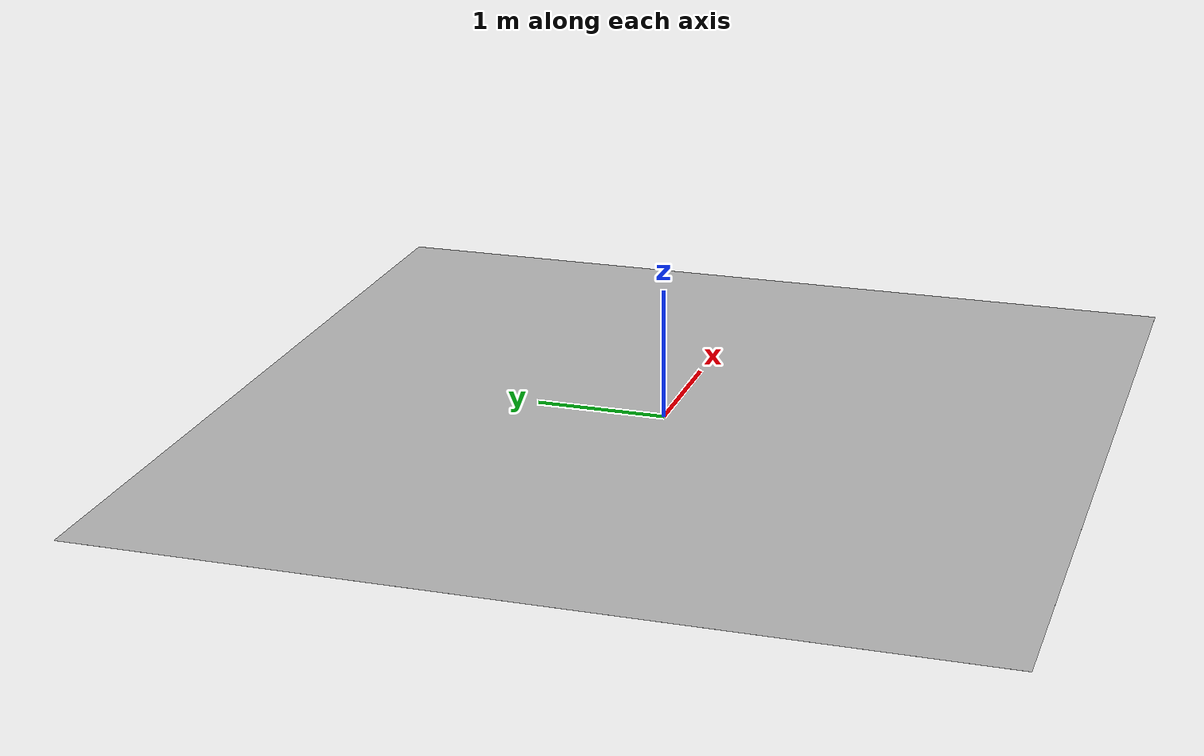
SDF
<?xml version="1.0" encoding="UTF-8"?>
<sdf version="1.4">
   <model name="track2">
      <static>true</static>
      <link name="link">
         <visual name="visual">
            <cast_shadows>false</cast_shadows>
            <geometry>
               <plane>
                  <normal>0 0 0</normal>
                  <size>6.6 6.6 -0.1</size>
               </plane>
            </geometry>
            <material>
               <script>
                  <uri>model://track2/materials/scripts</uri>
                  <uri>model://track2/materials/textures/</uri>
                  <name>Track2/Image</name>
               </script>
            </material>
         </visual>
      </link>
   </model>
</sdf>
